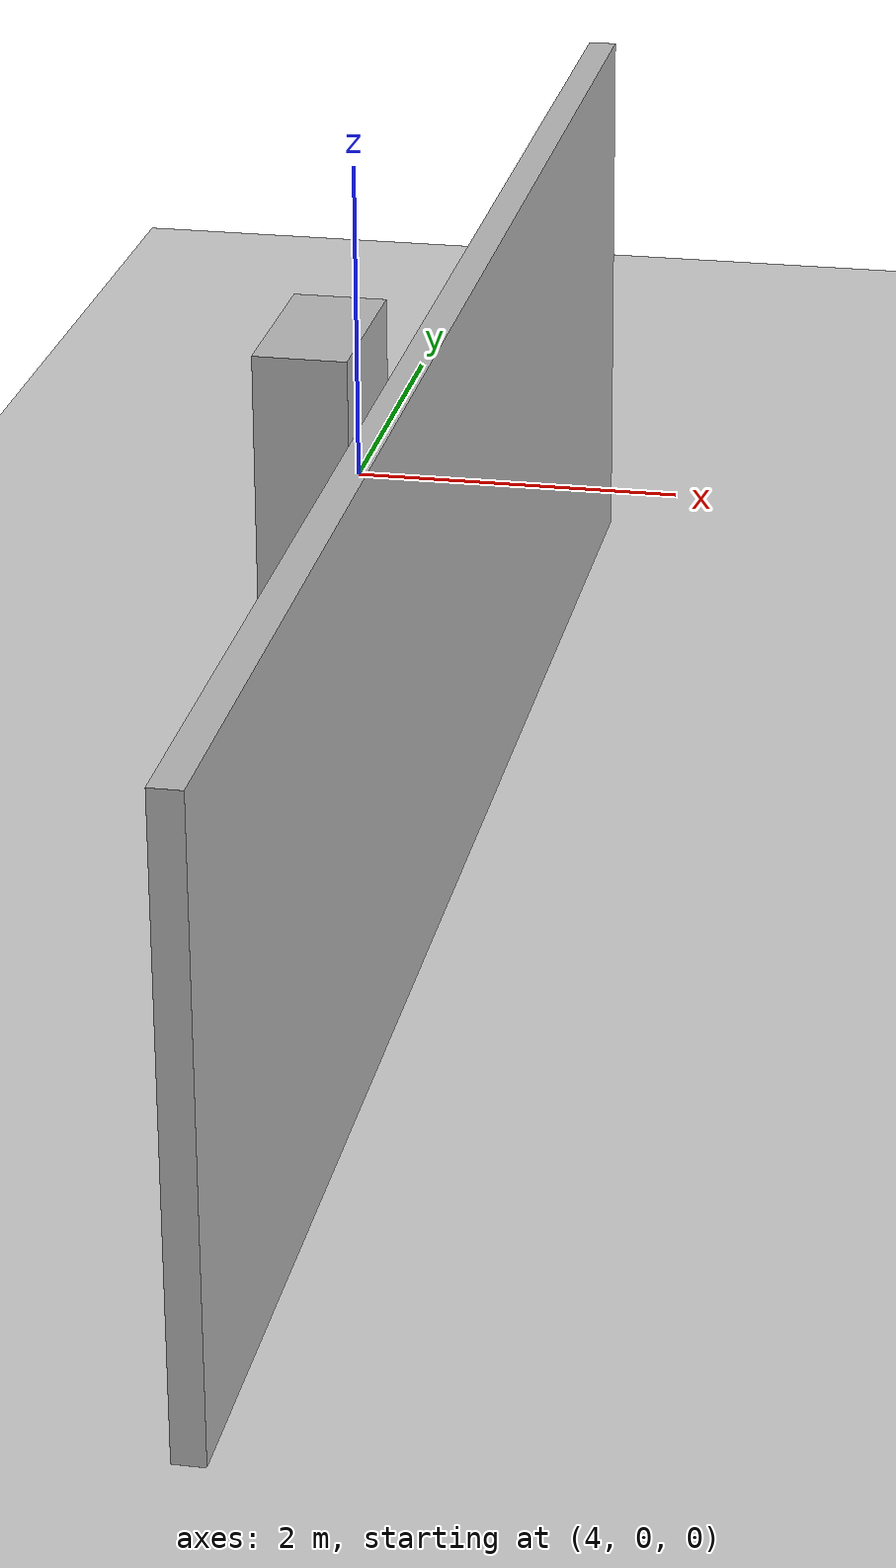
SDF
<?xml version="1.0" ?>
<sdf version="1.6">
  <world name="just_bump_out">

    <include>
      <uri>model://ground_plane</uri>
    </include>
    <include>
      <uri>model://sun</uri>
    </include>

    <gui>
      <camera name="user_camera">
        <pose>2.8 -5.3 20 0 1.5708 0</pose>
        <projection_type>orthographic</projection_type>
      </camera>
    </gui>

    <model name="just_bump_out_walls">
      <static>true</static>
      <pose>0 0 0 0 0 0</pose>
      <link name="link">

        <!-- S8: long wall, 10 m -->
        <visual name="v_s8"><pose>5.6 -5.575 1.5 0 0 0</pose>
          <geometry><box><size>0.15 10.15 3.0</size></box></geometry>
        </visual>
        <collision name="c_s8"><pose>5.6 -5.575 1.5 0 0 0</pose>
          <geometry><box><size>0.15 10.15 3.0</size></box></geometry>
        </collision>

        <!-- Pillar: free-standing bump-out near the long wall -->
        <visual name="v_pillar"><pose>5.055 -5.575 1.5 0 0 0</pose>
          <geometry><box><size>0.46 0.9 3.0</size></box></geometry>
        </visual>
        <collision name="c_pillar"><pose>5.055 -5.575 1.5 0 0 0</pose>
          <geometry><box><size>0.46 0.9 3.0</size></box></geometry>
        </collision>

      </link>
    </model>

  </world>
</sdf>
